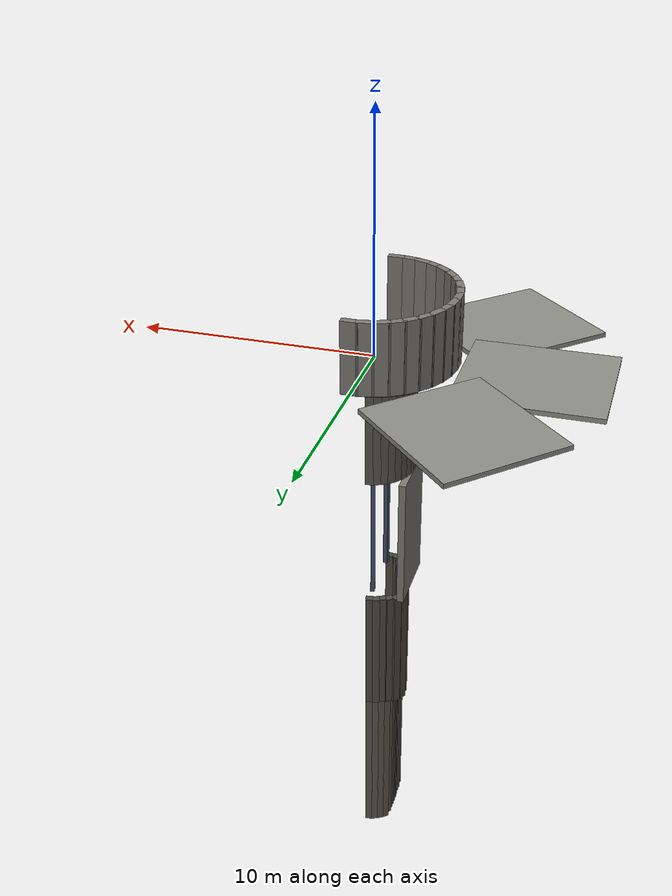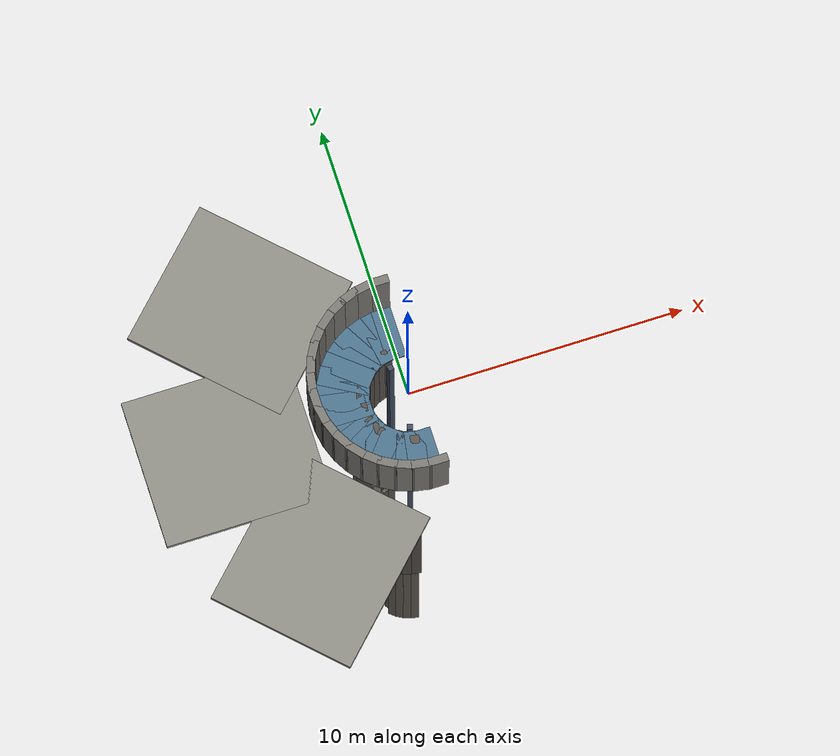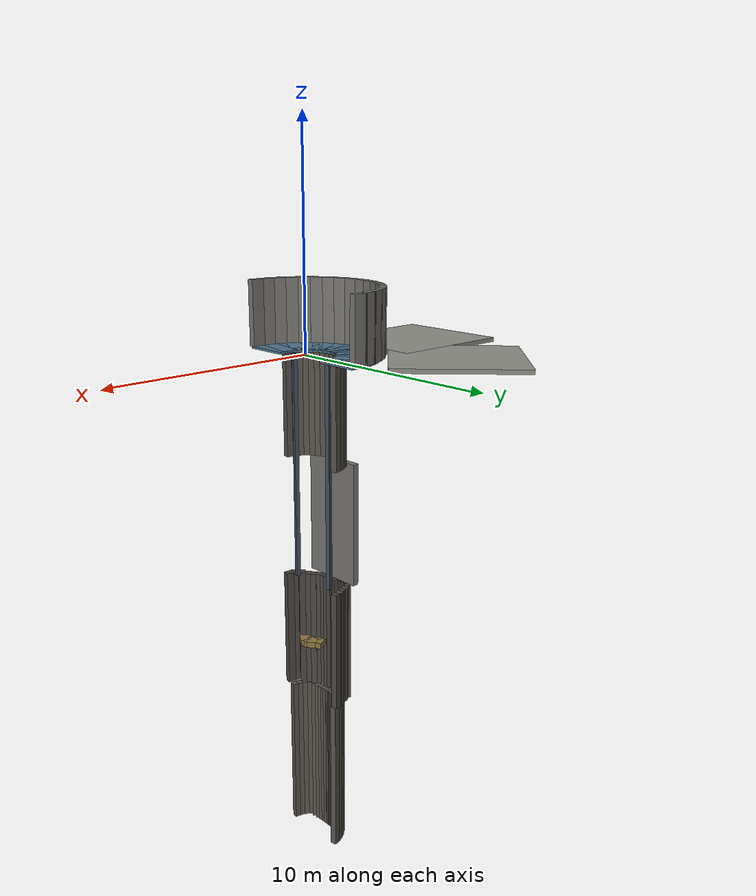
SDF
<sdf version="1.9">
 <world name="vshaft">
  <model name="inspection_shaft">
   <static>true</static>
   <link name="b0_chamber_9">
    <pose>0.0000 3.3500 1.5000 0 0 1.570796</pose>
    <collision name="c"><geometry><box><size>0.300 0.700 3.000</size></box></geometry></collision>
    <visual name="v">
     <geometry><box><size>0.300 0.700 3.000</size></box></geometry>
     <material><ambient>0.48 0.47 0.45 1</ambient><diffuse>0.48 0.47 0.45 1</diffuse></material>
    </visual>
   </link>
   <link name="b0_chamber_10">
    <pose>-0.5817 3.2991 1.5000 0 0 1.745329</pose>
    <collision name="c"><geometry><box><size>0.300 0.700 3.000</size></box></geometry></collision>
    <visual name="v">
     <geometry><box><size>0.300 0.700 3.000</size></box></geometry>
     <material><ambient>0.48 0.47 0.45 1</ambient><diffuse>0.48 0.47 0.45 1</diffuse></material>
    </visual>
   </link>
   <link name="b0_chamber_11">
    <pose>-1.1458 3.1480 1.5000 0 0 1.919862</pose>
    <collision name="c"><geometry><box><size>0.300 0.700 3.000</size></box></geometry></collision>
    <visual name="v">
     <geometry><box><size>0.300 0.700 3.000</size></box></geometry>
     <material><ambient>0.48 0.47 0.45 1</ambient><diffuse>0.48 0.47 0.45 1</diffuse></material>
    </visual>
   </link>
   <link name="b0_chamber_12">
    <pose>-1.6750 2.9012 1.5000 0 0 2.094395</pose>
    <collision name="c"><geometry><box><size>0.300 0.700 3.000</size></box></geometry></collision>
    <visual name="v">
     <geometry><box><size>0.300 0.700 3.000</size></box></geometry>
     <material><ambient>0.48 0.47 0.45 1</ambient><diffuse>0.48 0.47 0.45 1</diffuse></material>
    </visual>
   </link>
   <link name="b0_chamber_13">
    <pose>-2.1533 2.5662 1.5000 0 0 2.268928</pose>
    <collision name="c"><geometry><box><size>0.300 0.700 3.000</size></box></geometry></collision>
    <visual name="v">
     <geometry><box><size>0.300 0.700 3.000</size></box></geometry>
     <material><ambient>0.48 0.47 0.45 1</ambient><diffuse>0.48 0.47 0.45 1</diffuse></material>
    </visual>
   </link>
   <link name="b0_chamber_14">
    <pose>-2.5662 2.1533 1.5000 0 0 2.443461</pose>
    <collision name="c"><geometry><box><size>0.300 0.700 3.000</size></box></geometry></collision>
    <visual name="v">
     <geometry><box><size>0.300 0.700 3.000</size></box></geometry>
     <material><ambient>0.48 0.47 0.45 1</ambient><diffuse>0.48 0.47 0.45 1</diffuse></material>
    </visual>
   </link>
   <link name="b0_chamber_15">
    <pose>-2.9012 1.6750 1.5000 0 0 2.617994</pose>
    <collision name="c"><geometry><box><size>0.300 0.700 3.000</size></box></geometry></collision>
    <visual name="v">
     <geometry><box><size>0.300 0.700 3.000</size></box></geometry>
     <material><ambient>0.48 0.47 0.45 1</ambient><diffuse>0.48 0.47 0.45 1</diffuse></material>
    </visual>
   </link>
   <link name="b0_chamber_16">
    <pose>-3.1480 1.1458 1.5000 0 0 2.792527</pose>
    <collision name="c"><geometry><box><size>0.300 0.700 3.000</size></box></geometry></collision>
    <visual name="v">
     <geometry><box><size>0.300 0.700 3.000</size></box></geometry>
     <material><ambient>0.48 0.47 0.45 1</ambient><diffuse>0.48 0.47 0.45 1</diffuse></material>
    </visual>
   </link>
   <link name="b0_chamber_17">
    <pose>-3.2991 0.5817 1.5000 0 0 2.967060</pose>
    <collision name="c"><geometry><box><size>0.300 0.700 3.000</size></box></geometry></collision>
    <visual name="v">
     <geometry><box><size>0.300 0.700 3.000</size></box></geometry>
     <material><ambient>0.48 0.47 0.45 1</ambient><diffuse>0.48 0.47 0.45 1</diffuse></material>
    </visual>
   </link>
   <link name="b0_chamber_18">
    <pose>-3.3500 0.0000 1.5000 0 0 3.141593</pose>
    <collision name="c"><geometry><box><size>0.300 0.700 3.000</size></box></geometry></collision>
    <visual name="v">
     <geometry><box><size>0.300 0.700 3.000</size></box></geometry>
     <material><ambient>0.48 0.47 0.45 1</ambient><diffuse>0.48 0.47 0.45 1</diffuse></material>
    </visual>
   </link>
   <link name="b0_chamber_19">
    <pose>-3.2991 -0.5817 1.5000 0 0 3.316126</pose>
    <collision name="c"><geometry><box><size>0.300 0.700 3.000</size></box></geometry></collision>
    <visual name="v">
     <geometry><box><size>0.300 0.700 3.000</size></box></geometry>
     <material><ambient>0.48 0.47 0.45 1</ambient><diffuse>0.48 0.47 0.45 1</diffuse></material>
    </visual>
   </link>
   <link name="b0_chamber_20">
    <pose>-3.1480 -1.1458 1.5000 0 0 3.490659</pose>
    <collision name="c"><geometry><box><size>0.300 0.700 3.000</size></box></geometry></collision>
    <visual name="v">
     <geometry><box><size>0.300 0.700 3.000</size></box></geometry>
     <material><ambient>0.48 0.47 0.45 1</ambient><diffuse>0.48 0.47 0.45 1</diffuse></material>
    </visual>
   </link>
   <link name="b0_chamber_21">
    <pose>-2.9012 -1.6750 1.5000 0 0 3.665191</pose>
    <collision name="c"><geometry><box><size>0.300 0.700 3.000</size></box></geometry></collision>
    <visual name="v">
     <geometry><box><size>0.300 0.700 3.000</size></box></geometry>
     <material><ambient>0.48 0.47 0.45 1</ambient><diffuse>0.48 0.47 0.45 1</diffuse></material>
    </visual>
   </link>
   <link name="b0_chamber_22">
    <pose>-2.5662 -2.1533 1.5000 0 0 3.839724</pose>
    <collision name="c"><geometry><box><size>0.300 0.700 3.000</size></box></geometry></collision>
    <visual name="v">
     <geometry><box><size>0.300 0.700 3.000</size></box></geometry>
     <material><ambient>0.48 0.47 0.45 1</ambient><diffuse>0.48 0.47 0.45 1</diffuse></material>
    </visual>
   </link>
   <link name="b0_chamber_23">
    <pose>-2.1533 -2.5662 1.5000 0 0 4.014257</pose>
    <collision name="c"><geometry><box><size>0.300 0.700 3.000</size></box></geometry></collision>
    <visual name="v">
     <geometry><box><size>0.300 0.700 3.000</size></box></geometry>
     <material><ambient>0.48 0.47 0.45 1</ambient><diffuse>0.48 0.47 0.45 1</diffuse></material>
    </visual>
   </link>
   <link name="b0_chamber_24">
    <pose>-1.6750 -2.9012 1.5000 0 0 4.188790</pose>
    <collision name="c"><geometry><box><size>0.300 0.700 3.000</size></box></geometry></collision>
    <visual name="v">
     <geometry><box><size>0.300 0.700 3.000</size></box></geometry>
     <material><ambient>0.48 0.47 0.45 1</ambient><diffuse>0.48 0.47 0.45 1</diffuse></material>
    </visual>
   </link>
   <link name="b0_chamber_25">
    <pose>-1.1458 -3.1480 1.5000 0 0 4.363323</pose>
    <collision name="c"><geometry><box><size>0.300 0.700 3.000</size></box></geometry></collision>
    <visual name="v">
     <geometry><box><size>0.300 0.700 3.000</size></box></geometry>
     <material><ambient>0.48 0.47 0.45 1</ambient><diffuse>0.48 0.47 0.45 1</diffuse></material>
    </visual>
   </link>
   <link name="b0_chamber_26">
    <pose>-0.5817 -3.2991 1.5000 0 0 4.537856</pose>
    <collision name="c"><geometry><box><size>0.300 0.700 3.000</size></box></geometry></collision>
    <visual name="v">
     <geometry><box><size>0.300 0.700 3.000</size></box></geometry>
     <material><ambient>0.48 0.47 0.45 1</ambient><diffuse>0.48 0.47 0.45 1</diffuse></material>
    </visual>
   </link>
   <link name="b0_chamber_27">
    <pose>-0.0000 -3.3500 1.5000 0 0 4.712389</pose>
    <collision name="c"><geometry><box><size>0.300 0.700 3.000</size></box></geometry></collision>
    <visual name="v">
     <geometry><box><size>0.300 0.700 3.000</size></box></geometry>
     <material><ambient>0.48 0.47 0.45 1</ambient><diffuse>0.48 0.47 0.45 1</diffuse></material>
    </visual>
   </link>
   <link name="ledge_ring_9">
    <pose>0.0000 2.3500 -0.0500 0 0 1.570796</pose>
    <collision name="c"><geometry><box><size>2.000 0.700 0.100</size></box></geometry></collision>
    <visual name="v">
     <geometry><box><size>2.000 0.700 0.100</size></box></geometry>
     <material><ambient>0.30 0.45 0.55 1</ambient><diffuse>0.30 0.45 0.55 1</diffuse></material>
    </visual>
   </link>
   <link name="ledge_ring_10">
    <pose>-0.4081 2.3143 -0.0500 0 0 1.745329</pose>
    <collision name="c"><geometry><box><size>2.000 0.700 0.100</size></box></geometry></collision>
    <visual name="v">
     <geometry><box><size>2.000 0.700 0.100</size></box></geometry>
     <material><ambient>0.30 0.45 0.55 1</ambient><diffuse>0.30 0.45 0.55 1</diffuse></material>
    </visual>
   </link>
   <link name="ledge_ring_11">
    <pose>-0.8037 2.2083 -0.0500 0 0 1.919862</pose>
    <collision name="c"><geometry><box><size>2.000 0.700 0.100</size></box></geometry></collision>
    <visual name="v">
     <geometry><box><size>2.000 0.700 0.100</size></box></geometry>
     <material><ambient>0.30 0.45 0.55 1</ambient><diffuse>0.30 0.45 0.55 1</diffuse></material>
    </visual>
   </link>
   <link name="ledge_ring_12">
    <pose>-1.1750 2.0352 -0.0500 0 0 2.094395</pose>
    <collision name="c"><geometry><box><size>2.000 0.700 0.100</size></box></geometry></collision>
    <visual name="v">
     <geometry><box><size>2.000 0.700 0.100</size></box></geometry>
     <material><ambient>0.30 0.45 0.55 1</ambient><diffuse>0.30 0.45 0.55 1</diffuse></material>
    </visual>
   </link>
   <link name="ledge_ring_13">
    <pose>-1.5106 1.8002 -0.0500 0 0 2.268928</pose>
    <collision name="c"><geometry><box><size>2.000 0.700 0.100</size></box></geometry></collision>
    <visual name="v">
     <geometry><box><size>2.000 0.700 0.100</size></box></geometry>
     <material><ambient>0.30 0.45 0.55 1</ambient><diffuse>0.30 0.45 0.55 1</diffuse></material>
    </visual>
   </link>
   <link name="ledge_ring_14">
    <pose>-1.8002 1.5106 -0.0500 0 0 2.443461</pose>
    <collision name="c"><geometry><box><size>2.000 0.700 0.100</size></box></geometry></collision>
    <visual name="v">
     <geometry><box><size>2.000 0.700 0.100</size></box></geometry>
     <material><ambient>0.30 0.45 0.55 1</ambient><diffuse>0.30 0.45 0.55 1</diffuse></material>
    </visual>
   </link>
   <link name="ledge_ring_15">
    <pose>-2.0352 1.1750 -0.0500 0 0 2.617994</pose>
    <collision name="c"><geometry><box><size>2.000 0.700 0.100</size></box></geometry></collision>
    <visual name="v">
     <geometry><box><size>2.000 0.700 0.100</size></box></geometry>
     <material><ambient>0.30 0.45 0.55 1</ambient><diffuse>0.30 0.45 0.55 1</diffuse></material>
    </visual>
   </link>
   <link name="ledge_ring_16">
    <pose>-2.2083 0.8037 -0.0500 0 0 2.792527</pose>
    <collision name="c"><geometry><box><size>2.000 0.700 0.100</size></box></geometry></collision>
    <visual name="v">
     <geometry><box><size>2.000 0.700 0.100</size></box></geometry>
     <material><ambient>0.30 0.45 0.55 1</ambient><diffuse>0.30 0.45 0.55 1</diffuse></material>
    </visual>
   </link>
   <link name="ledge_ring_17">
    <pose>-2.3143 0.4081 -0.0500 0 0 2.967060</pose>
    <collision name="c"><geometry><box><size>2.000 0.700 0.100</size></box></geometry></collision>
    <visual name="v">
     <geometry><box><size>2.000 0.700 0.100</size></box></geometry>
     <material><ambient>0.30 0.45 0.55 1</ambient><diffuse>0.30 0.45 0.55 1</diffuse></material>
    </visual>
   </link>
   <link name="ledge_ring_18">
    <pose>-2.3500 0.0000 -0.0500 0 0 3.141593</pose>
    <collision name="c"><geometry><box><size>2.000 0.700 0.100</size></box></geometry></collision>
    <visual name="v">
     <geometry><box><size>2.000 0.700 0.100</size></box></geometry>
     <material><ambient>0.30 0.45 0.55 1</ambient><diffuse>0.30 0.45 0.55 1</diffuse></material>
    </visual>
   </link>
   <link name="ledge_ring_19">
    <pose>-2.3143 -0.4081 -0.0500 0 0 3.316126</pose>
    <collision name="c"><geometry><box><size>2.000 0.700 0.100</size></box></geometry></collision>
    <visual name="v">
     <geometry><box><size>2.000 0.700 0.100</size></box></geometry>
     <material><ambient>0.30 0.45 0.55 1</ambient><diffuse>0.30 0.45 0.55 1</diffuse></material>
    </visual>
   </link>
   <link name="ledge_ring_20">
    <pose>-2.2083 -0.8037 -0.0500 0 0 3.490659</pose>
    <collision name="c"><geometry><box><size>2.000 0.700 0.100</size></box></geometry></collision>
    <visual name="v">
     <geometry><box><size>2.000 0.700 0.100</size></box></geometry>
     <material><ambient>0.30 0.45 0.55 1</ambient><diffuse>0.30 0.45 0.55 1</diffuse></material>
    </visual>
   </link>
   <link name="ledge_ring_21">
    <pose>-2.0352 -1.1750 -0.0500 0 0 3.665191</pose>
    <collision name="c"><geometry><box><size>2.000 0.700 0.100</size></box></geometry></collision>
    <visual name="v">
     <geometry><box><size>2.000 0.700 0.100</size></box></geometry>
     <material><ambient>0.30 0.45 0.55 1</ambient><diffuse>0.30 0.45 0.55 1</diffuse></material>
    </visual>
   </link>
   <link name="ledge_ring_22">
    <pose>-1.8002 -1.5106 -0.0500 0 0 3.839724</pose>
    <collision name="c"><geometry><box><size>2.000 0.700 0.100</size></box></geometry></collision>
    <visual name="v">
     <geometry><box><size>2.000 0.700 0.100</size></box></geometry>
     <material><ambient>0.30 0.45 0.55 1</ambient><diffuse>0.30 0.45 0.55 1</diffuse></material>
    </visual>
   </link>
   <link name="ledge_ring_23">
    <pose>-1.5106 -1.8002 -0.0500 0 0 4.014257</pose>
    <collision name="c"><geometry><box><size>2.000 0.700 0.100</size></box></geometry></collision>
    <visual name="v">
     <geometry><box><size>2.000 0.700 0.100</size></box></geometry>
     <material><ambient>0.30 0.45 0.55 1</ambient><diffuse>0.30 0.45 0.55 1</diffuse></material>
    </visual>
   </link>
   <link name="ledge_ring_24">
    <pose>-1.1750 -2.0352 -0.0500 0 0 4.188790</pose>
    <collision name="c"><geometry><box><size>2.000 0.700 0.100</size></box></geometry></collision>
    <visual name="v">
     <geometry><box><size>2.000 0.700 0.100</size></box></geometry>
     <material><ambient>0.30 0.45 0.55 1</ambient><diffuse>0.30 0.45 0.55 1</diffuse></material>
    </visual>
   </link>
   <link name="ledge_ring_25">
    <pose>-0.8037 -2.2083 -0.0500 0 0 4.363323</pose>
    <collision name="c"><geometry><box><size>2.000 0.700 0.100</size></box></geometry></collision>
    <visual name="v">
     <geometry><box><size>2.000 0.700 0.100</size></box></geometry>
     <material><ambient>0.30 0.45 0.55 1</ambient><diffuse>0.30 0.45 0.55 1</diffuse></material>
    </visual>
   </link>
   <link name="ledge_ring_26">
    <pose>-0.4081 -2.3143 -0.0500 0 0 4.537856</pose>
    <collision name="c"><geometry><box><size>2.000 0.700 0.100</size></box></geometry></collision>
    <visual name="v">
     <geometry><box><size>2.000 0.700 0.100</size></box></geometry>
     <material><ambient>0.30 0.45 0.55 1</ambient><diffuse>0.30 0.45 0.55 1</diffuse></material>
    </visual>
   </link>
   <link name="ledge_ring_27">
    <pose>-0.0000 -2.3500 -0.0500 0 0 4.712389</pose>
    <collision name="c"><geometry><box><size>2.000 0.700 0.100</size></box></geometry></collision>
    <visual name="v">
     <geometry><box><size>2.000 0.700 0.100</size></box></geometry>
     <material><ambient>0.30 0.45 0.55 1</ambient><diffuse>0.30 0.45 0.55 1</diffuse></material>
    </visual>
   </link>
   <link name="b1_circ_10">
    <pose>-0.2865 1.6249 -2.5000 0 0 1.745329</pose>
    <collision name="c"><geometry><box><size>0.300 0.328 5.000</size></box></geometry></collision>
    <visual name="v">
     <geometry><box><size>0.300 0.328 5.000</size></box></geometry>
     <material><ambient>0.35 0.33 0.30 1</ambient><diffuse>0.35 0.33 0.30 1</diffuse></material>
    </visual>
   </link>
   <link name="b1_circ_11">
    <pose>-0.5643 1.5505 -2.5000 0 0 1.919862</pose>
    <collision name="c"><geometry><box><size>0.300 0.328 5.000</size></box></geometry></collision>
    <visual name="v">
     <geometry><box><size>0.300 0.328 5.000</size></box></geometry>
     <material><ambient>0.35 0.33 0.30 1</ambient><diffuse>0.35 0.33 0.30 1</diffuse></material>
    </visual>
   </link>
   <link name="b1_circ_12">
    <pose>-0.8250 1.4289 -2.5000 0 0 2.094395</pose>
    <collision name="c"><geometry><box><size>0.300 0.328 5.000</size></box></geometry></collision>
    <visual name="v">
     <geometry><box><size>0.300 0.328 5.000</size></box></geometry>
     <material><ambient>0.35 0.33 0.30 1</ambient><diffuse>0.35 0.33 0.30 1</diffuse></material>
    </visual>
   </link>
   <link name="b1_circ_13">
    <pose>-1.0606 1.2640 -2.5000 0 0 2.268928</pose>
    <collision name="c"><geometry><box><size>0.300 0.328 5.000</size></box></geometry></collision>
    <visual name="v">
     <geometry><box><size>0.300 0.328 5.000</size></box></geometry>
     <material><ambient>0.35 0.33 0.30 1</ambient><diffuse>0.35 0.33 0.30 1</diffuse></material>
    </visual>
   </link>
   <link name="b1_circ_14">
    <pose>-1.2640 1.0606 -2.5000 0 0 2.443461</pose>
    <collision name="c"><geometry><box><size>0.300 0.328 5.000</size></box></geometry></collision>
    <visual name="v">
     <geometry><box><size>0.300 0.328 5.000</size></box></geometry>
     <material><ambient>0.35 0.33 0.30 1</ambient><diffuse>0.35 0.33 0.30 1</diffuse></material>
    </visual>
   </link>
   <link name="b1_circ_15">
    <pose>-1.4289 0.8250 -2.5000 0 0 2.617994</pose>
    <collision name="c"><geometry><box><size>0.300 0.328 5.000</size></box></geometry></collision>
    <visual name="v">
     <geometry><box><size>0.300 0.328 5.000</size></box></geometry>
     <material><ambient>0.35 0.33 0.30 1</ambient><diffuse>0.35 0.33 0.30 1</diffuse></material>
    </visual>
   </link>
   <link name="b1_circ_16">
    <pose>-1.5505 0.5643 -2.5000 0 0 2.792527</pose>
    <collision name="c"><geometry><box><size>0.300 0.328 5.000</size></box></geometry></collision>
    <visual name="v">
     <geometry><box><size>0.300 0.328 5.000</size></box></geometry>
     <material><ambient>0.35 0.33 0.30 1</ambient><diffuse>0.35 0.33 0.30 1</diffuse></material>
    </visual>
   </link>
   <link name="b1_circ_17">
    <pose>-1.6249 0.2865 -2.5000 0 0 2.967060</pose>
    <collision name="c"><geometry><box><size>0.300 0.328 5.000</size></box></geometry></collision>
    <visual name="v">
     <geometry><box><size>0.300 0.328 5.000</size></box></geometry>
     <material><ambient>0.35 0.33 0.30 1</ambient><diffuse>0.35 0.33 0.30 1</diffuse></material>
    </visual>
   </link>
   <link name="b1_circ_18">
    <pose>-1.6500 0.0000 -2.5000 0 0 3.141593</pose>
    <collision name="c"><geometry><box><size>0.300 0.328 5.000</size></box></geometry></collision>
    <visual name="v">
     <geometry><box><size>0.300 0.328 5.000</size></box></geometry>
     <material><ambient>0.35 0.33 0.30 1</ambient><diffuse>0.35 0.33 0.30 1</diffuse></material>
    </visual>
   </link>
   <link name="b1_circ_19">
    <pose>-1.6249 -0.2865 -2.5000 0 0 3.316126</pose>
    <collision name="c"><geometry><box><size>0.300 0.328 5.000</size></box></geometry></collision>
    <visual name="v">
     <geometry><box><size>0.300 0.328 5.000</size></box></geometry>
     <material><ambient>0.35 0.33 0.30 1</ambient><diffuse>0.35 0.33 0.30 1</diffuse></material>
    </visual>
   </link>
   <link name="b1_circ_20">
    <pose>-1.5505 -0.5643 -2.5000 0 0 3.490659</pose>
    <collision name="c"><geometry><box><size>0.300 0.328 5.000</size></box></geometry></collision>
    <visual name="v">
     <geometry><box><size>0.300 0.328 5.000</size></box></geometry>
     <material><ambient>0.35 0.33 0.30 1</ambient><diffuse>0.35 0.33 0.30 1</diffuse></material>
    </visual>
   </link>
   <link name="b1_circ_21">
    <pose>-1.4289 -0.8250 -2.5000 0 0 3.665191</pose>
    <collision name="c"><geometry><box><size>0.300 0.328 5.000</size></box></geometry></collision>
    <visual name="v">
     <geometry><box><size>0.300 0.328 5.000</size></box></geometry>
     <material><ambient>0.35 0.33 0.30 1</ambient><diffuse>0.35 0.33 0.30 1</diffuse></material>
    </visual>
   </link>
   <link name="b1_circ_22">
    <pose>-1.2640 -1.0606 -2.5000 0 0 3.839724</pose>
    <collision name="c"><geometry><box><size>0.300 0.328 5.000</size></box></geometry></collision>
    <visual name="v">
     <geometry><box><size>0.300 0.328 5.000</size></box></geometry>
     <material><ambient>0.35 0.33 0.30 1</ambient><diffuse>0.35 0.33 0.30 1</diffuse></material>
    </visual>
   </link>
   <link name="b1_circ_23">
    <pose>-1.0606 -1.2640 -2.5000 0 0 4.014257</pose>
    <collision name="c"><geometry><box><size>0.300 0.328 5.000</size></box></geometry></collision>
    <visual name="v">
     <geometry><box><size>0.300 0.328 5.000</size></box></geometry>
     <material><ambient>0.35 0.33 0.30 1</ambient><diffuse>0.35 0.33 0.30 1</diffuse></material>
    </visual>
   </link>
   <link name="b1_circ_24">
    <pose>-0.8250 -1.4289 -2.5000 0 0 4.188790</pose>
    <collision name="c"><geometry><box><size>0.300 0.328 5.000</size></box></geometry></collision>
    <visual name="v">
     <geometry><box><size>0.300 0.328 5.000</size></box></geometry>
     <material><ambient>0.35 0.33 0.30 1</ambient><diffuse>0.35 0.33 0.30 1</diffuse></material>
    </visual>
   </link>
   <link name="b1_circ_25">
    <pose>-0.5643 -1.5505 -2.5000 0 0 4.363323</pose>
    <collision name="c"><geometry><box><size>0.300 0.328 5.000</size></box></geometry></collision>
    <visual name="v">
     <geometry><box><size>0.300 0.328 5.000</size></box></geometry>
     <material><ambient>0.35 0.33 0.30 1</ambient><diffuse>0.35 0.33 0.30 1</diffuse></material>
    </visual>
   </link>
   <link name="b1_circ_26">
    <pose>-0.2865 -1.6249 -2.5000 0 0 4.537856</pose>
    <collision name="c"><geometry><box><size>0.300 0.328 5.000</size></box></geometry></collision>
    <visual name="v">
     <geometry><box><size>0.300 0.328 5.000</size></box></geometry>
     <material><ambient>0.35 0.33 0.30 1</ambient><diffuse>0.35 0.33 0.30 1</diffuse></material>
    </visual>
   </link>
   <link name="b2_rect_nx">
    <pose>-1.6500 0.0000 -8.0000 0 0 0.000000</pose>
    <collision name="c"><geometry><box><size>0.300 3.000 6.000</size></box></geometry></collision>
    <visual name="v">
     <geometry><box><size>0.300 3.000 6.000</size></box></geometry>
     <material><ambient>0.48 0.47 0.45 1</ambient><diffuse>0.48 0.47 0.45 1</diffuse></material>
    </visual>
   </link>
   <link name="b3_rough_10">
    <pose>-0.2819 1.5989 -14.0000 0 0 1.745329</pose>
    <collision name="c"><geometry><box><size>0.300 0.322 6.000</size></box></geometry></collision>
    <visual name="v">
     <geometry><box><size>0.300 0.322 6.000</size></box></geometry>
     <material><ambient>0.30 0.28 0.26 1</ambient><diffuse>0.30 0.28 0.26 1</diffuse></material>
    </visual>
   </link>
   <link name="b3_rough_11">
    <pose>-0.5662 1.5556 -14.0000 0 0 1.919862</pose>
    <collision name="c"><geometry><box><size>0.300 0.329 6.000</size></box></geometry></collision>
    <visual name="v">
     <geometry><box><size>0.300 0.329 6.000</size></box></geometry>
     <material><ambient>0.30 0.28 0.26 1</ambient><diffuse>0.30 0.28 0.26 1</diffuse></material>
    </visual>
   </link>
   <link name="b3_rough_12">
    <pose>-0.8274 1.4331 -14.0000 0 0 2.094395</pose>
    <collision name="c"><geometry><box><size>0.300 0.329 6.000</size></box></geometry></collision>
    <visual name="v">
     <geometry><box><size>0.300 0.329 6.000</size></box></geometry>
     <material><ambient>0.30 0.28 0.26 1</ambient><diffuse>0.30 0.28 0.26 1</diffuse></material>
    </visual>
   </link>
   <link name="b3_rough_13">
    <pose>-1.1124 1.3257 -14.0000 0 0 2.268928</pose>
    <collision name="c"><geometry><box><size>0.300 0.346 6.000</size></box></geometry></collision>
    <visual name="v">
     <geometry><box><size>0.300 0.346 6.000</size></box></geometry>
     <material><ambient>0.30 0.28 0.26 1</ambient><diffuse>0.30 0.28 0.26 1</diffuse></material>
    </visual>
   </link>
   <link name="b3_rough_14">
    <pose>-1.4182 1.1900 -14.0000 0 0 2.443461</pose>
    <collision name="c"><geometry><box><size>0.300 0.372 6.000</size></box></geometry></collision>
    <visual name="v">
     <geometry><box><size>0.300 0.372 6.000</size></box></geometry>
     <material><ambient>0.30 0.28 0.26 1</ambient><diffuse>0.30 0.28 0.26 1</diffuse></material>
    </visual>
   </link>
   <link name="b3_rough_15">
    <pose>-1.6180 0.9341 -14.0000 0 0 2.617994</pose>
    <collision name="c"><geometry><box><size>0.300 0.376 6.000</size></box></geometry></collision>
    <visual name="v">
     <geometry><box><size>0.300 0.376 6.000</size></box></geometry>
     <material><ambient>0.30 0.28 0.26 1</ambient><diffuse>0.30 0.28 0.26 1</diffuse></material>
    </visual>
   </link>
   <link name="b3_rough_16">
    <pose>-1.6055 0.5844 -14.0000 0 0 2.792527</pose>
    <collision name="c"><geometry><box><size>0.300 0.341 6.000</size></box></geometry></collision>
    <visual name="v">
     <geometry><box><size>0.300 0.341 6.000</size></box></geometry>
     <material><ambient>0.30 0.28 0.26 1</ambient><diffuse>0.30 0.28 0.26 1</diffuse></material>
    </visual>
   </link>
   <link name="b3_rough_17">
    <pose>-1.4619 0.2578 -14.0000 0 0 2.967060</pose>
    <collision name="c"><geometry><box><size>0.300 0.292 6.000</size></box></geometry></collision>
    <visual name="v">
     <geometry><box><size>0.300 0.292 6.000</size></box></geometry>
     <material><ambient>0.30 0.28 0.26 1</ambient><diffuse>0.30 0.28 0.26 1</diffuse></material>
    </visual>
   </link>
   <link name="b3_rough_18">
    <pose>-1.3720 0.0000 -14.0000 0 0 3.141593</pose>
    <collision name="c"><geometry><box><size>0.300 0.267 6.000</size></box></geometry></collision>
    <visual name="v">
     <geometry><box><size>0.300 0.267 6.000</size></box></geometry>
     <material><ambient>0.30 0.28 0.26 1</ambient><diffuse>0.30 0.28 0.26 1</diffuse></material>
    </visual>
   </link>
   <link name="b3_rough_19">
    <pose>-1.3896 -0.2450 -14.0000 0 0 3.316126</pose>
    <collision name="c"><geometry><box><size>0.300 0.276 6.000</size></box></geometry></collision>
    <visual name="v">
     <geometry><box><size>0.300 0.276 6.000</size></box></geometry>
     <material><ambient>0.30 0.28 0.26 1</ambient><diffuse>0.30 0.28 0.26 1</diffuse></material>
    </visual>
   </link>
   <link name="b3_rough_20">
    <pose>-1.3926 -0.5069 -14.0000 0 0 3.490659</pose>
    <collision name="c"><geometry><box><size>0.300 0.291 6.000</size></box></geometry></collision>
    <visual name="v">
     <geometry><box><size>0.300 0.291 6.000</size></box></geometry>
     <material><ambient>0.30 0.28 0.26 1</ambient><diffuse>0.30 0.28 0.26 1</diffuse></material>
    </visual>
   </link>
   <link name="b3_rough_21">
    <pose>-1.2828 -0.7406 -14.0000 0 0 3.665191</pose>
    <collision name="c"><geometry><box><size>0.300 0.291 6.000</size></box></geometry></collision>
    <visual name="v">
     <geometry><box><size>0.300 0.291 6.000</size></box></geometry>
     <material><ambient>0.30 0.28 0.26 1</ambient><diffuse>0.30 0.28 0.26 1</diffuse></material>
    </visual>
   </link>
   <link name="b3_rough_22">
    <pose>-1.1188 -0.9387 -14.0000 0 0 3.839724</pose>
    <collision name="c"><geometry><box><size>0.300 0.287 6.000</size></box></geometry></collision>
    <visual name="v">
     <geometry><box><size>0.300 0.287 6.000</size></box></geometry>
     <material><ambient>0.30 0.28 0.26 1</ambient><diffuse>0.30 0.28 0.26 1</diffuse></material>
    </visual>
   </link>
   <link name="b3_rough_23">
    <pose>-0.9930 -1.1834 -14.0000 0 0 4.014257</pose>
    <collision name="c"><geometry><box><size>0.300 0.305 6.000</size></box></geometry></collision>
    <visual name="v">
     <geometry><box><size>0.300 0.305 6.000</size></box></geometry>
     <material><ambient>0.30 0.28 0.26 1</ambient><diffuse>0.30 0.28 0.26 1</diffuse></material>
    </visual>
   </link>
   <link name="b3_rough_24">
    <pose>-0.8711 -1.5089 -14.0000 0 0 4.188790</pose>
    <collision name="c"><geometry><box><size>0.300 0.348 6.000</size></box></geometry></collision>
    <visual name="v">
     <geometry><box><size>0.300 0.348 6.000</size></box></geometry>
     <material><ambient>0.30 0.28 0.26 1</ambient><diffuse>0.30 0.28 0.26 1</diffuse></material>
    </visual>
   </link>
   <link name="b3_rough_25">
    <pose>-0.6502 -1.7864 -14.0000 0 0 4.363323</pose>
    <collision name="c"><geometry><box><size>0.300 0.383 6.000</size></box></geometry></collision>
    <visual name="v">
     <geometry><box><size>0.300 0.383 6.000</size></box></geometry>
     <material><ambient>0.30 0.28 0.26 1</ambient><diffuse>0.30 0.28 0.26 1</diffuse></material>
    </visual>
   </link>
   <link name="b3_rough_26">
    <pose>-0.3265 -1.8519 -14.0000 0 0 4.537856</pose>
    <collision name="c"><geometry><box><size>0.300 0.378 6.000</size></box></geometry></collision>
    <visual name="v">
     <geometry><box><size>0.300 0.378 6.000</size></box></geometry>
     <material><ambient>0.30 0.28 0.26 1</ambient><diffuse>0.30 0.28 0.26 1</diffuse></material>
    </visual>
   </link>
   <link name="b4_d_10">
    <pose>-0.2657 1.5068 -21.0000 0 0 1.745329</pose>
    <collision name="c"><geometry><box><size>0.300 0.302 8.000</size></box></geometry></collision>
    <visual name="v">
     <geometry><box><size>0.300 0.302 8.000</size></box></geometry>
     <material><ambient>0.35 0.33 0.30 1</ambient><diffuse>0.35 0.33 0.30 1</diffuse></material>
    </visual>
   </link>
   <link name="b4_d_11">
    <pose>-0.5233 1.4377 -21.0000 0 0 1.919862</pose>
    <collision name="c"><geometry><box><size>0.300 0.302 8.000</size></box></geometry></collision>
    <visual name="v">
     <geometry><box><size>0.300 0.302 8.000</size></box></geometry>
     <material><ambient>0.35 0.33 0.30 1</ambient><diffuse>0.35 0.33 0.30 1</diffuse></material>
    </visual>
   </link>
   <link name="b4_d_12">
    <pose>-0.7650 1.3250 -21.0000 0 0 2.094395</pose>
    <collision name="c"><geometry><box><size>0.300 0.302 8.000</size></box></geometry></collision>
    <visual name="v">
     <geometry><box><size>0.300 0.302 8.000</size></box></geometry>
     <material><ambient>0.35 0.33 0.30 1</ambient><diffuse>0.35 0.33 0.30 1</diffuse></material>
    </visual>
   </link>
   <link name="b4_d_13">
    <pose>-0.9835 1.1720 -21.0000 0 0 2.268928</pose>
    <collision name="c"><geometry><box><size>0.300 0.302 8.000</size></box></geometry></collision>
    <visual name="v">
     <geometry><box><size>0.300 0.302 8.000</size></box></geometry>
     <material><ambient>0.35 0.33 0.30 1</ambient><diffuse>0.35 0.33 0.30 1</diffuse></material>
    </visual>
   </link>
   <link name="b4_d_14">
    <pose>-1.0349 0.8684 -21.0000 0 0 2.443461</pose>
    <collision name="c"><geometry><box><size>0.300 0.263 8.000</size></box></geometry></collision>
    <visual name="v">
     <geometry><box><size>0.300 0.263 8.000</size></box></geometry>
     <material><ambient>0.35 0.33 0.30 1</ambient><diffuse>0.35 0.33 0.30 1</diffuse></material>
    </visual>
   </link>
   <link name="b4_d_15">
    <pose>-1.0499 0.6062 -21.0000 0 0 2.617994</pose>
    <collision name="c"><geometry><box><size>0.300 0.232 8.000</size></box></geometry></collision>
    <visual name="v">
     <geometry><box><size>0.300 0.232 8.000</size></box></geometry>
     <material><ambient>0.35 0.33 0.30 1</ambient><diffuse>0.35 0.33 0.30 1</diffuse></material>
    </visual>
   </link>
   <link name="b4_d_16">
    <pose>-1.0610 0.3862 -21.0000 0 0 2.792527</pose>
    <collision name="c"><geometry><box><size>0.300 0.214 8.000</size></box></geometry></collision>
    <visual name="v">
     <geometry><box><size>0.300 0.214 8.000</size></box></geometry>
     <material><ambient>0.35 0.33 0.30 1</ambient><diffuse>0.35 0.33 0.30 1</diffuse></material>
    </visual>
   </link>
   <link name="b4_d_17">
    <pose>-1.0677 0.1883 -21.0000 0 0 2.967060</pose>
    <collision name="c"><geometry><box><size>0.300 0.204 8.000</size></box></geometry></collision>
    <visual name="v">
     <geometry><box><size>0.300 0.204 8.000</size></box></geometry>
     <material><ambient>0.35 0.33 0.30 1</ambient><diffuse>0.35 0.33 0.30 1</diffuse></material>
    </visual>
   </link>
   <link name="b4_d_18">
    <pose>-1.0700 0.0000 -21.0000 0 0 3.141593</pose>
    <collision name="c"><geometry><box><size>0.300 0.201 8.000</size></box></geometry></collision>
    <visual name="v">
     <geometry><box><size>0.300 0.201 8.000</size></box></geometry>
     <material><ambient>0.35 0.33 0.30 1</ambient><diffuse>0.35 0.33 0.30 1</diffuse></material>
    </visual>
   </link>
   <link name="b4_d_19">
    <pose>-1.0677 -0.1883 -21.0000 0 0 3.316126</pose>
    <collision name="c"><geometry><box><size>0.300 0.204 8.000</size></box></geometry></collision>
    <visual name="v">
     <geometry><box><size>0.300 0.204 8.000</size></box></geometry>
     <material><ambient>0.35 0.33 0.30 1</ambient><diffuse>0.35 0.33 0.30 1</diffuse></material>
    </visual>
   </link>
   <link name="b4_d_20">
    <pose>-1.0610 -0.3862 -21.0000 0 0 3.490659</pose>
    <collision name="c"><geometry><box><size>0.300 0.214 8.000</size></box></geometry></collision>
    <visual name="v">
     <geometry><box><size>0.300 0.214 8.000</size></box></geometry>
     <material><ambient>0.35 0.33 0.30 1</ambient><diffuse>0.35 0.33 0.30 1</diffuse></material>
    </visual>
   </link>
   <link name="b4_d_21">
    <pose>-1.0499 -0.6062 -21.0000 0 0 3.665191</pose>
    <collision name="c"><geometry><box><size>0.300 0.232 8.000</size></box></geometry></collision>
    <visual name="v">
     <geometry><box><size>0.300 0.232 8.000</size></box></geometry>
     <material><ambient>0.35 0.33 0.30 1</ambient><diffuse>0.35 0.33 0.30 1</diffuse></material>
    </visual>
   </link>
   <link name="b4_d_22">
    <pose>-1.0349 -0.8684 -21.0000 0 0 3.839724</pose>
    <collision name="c"><geometry><box><size>0.300 0.263 8.000</size></box></geometry></collision>
    <visual name="v">
     <geometry><box><size>0.300 0.263 8.000</size></box></geometry>
     <material><ambient>0.35 0.33 0.30 1</ambient><diffuse>0.35 0.33 0.30 1</diffuse></material>
    </visual>
   </link>
   <link name="b4_d_23">
    <pose>-0.9835 -1.1720 -21.0000 0 0 4.014257</pose>
    <collision name="c"><geometry><box><size>0.300 0.302 8.000</size></box></geometry></collision>
    <visual name="v">
     <geometry><box><size>0.300 0.302 8.000</size></box></geometry>
     <material><ambient>0.35 0.33 0.30 1</ambient><diffuse>0.35 0.33 0.30 1</diffuse></material>
    </visual>
   </link>
   <link name="b4_d_24">
    <pose>-0.7650 -1.3250 -21.0000 0 0 4.188790</pose>
    <collision name="c"><geometry><box><size>0.300 0.302 8.000</size></box></geometry></collision>
    <visual name="v">
     <geometry><box><size>0.300 0.302 8.000</size></box></geometry>
     <material><ambient>0.35 0.33 0.30 1</ambient><diffuse>0.35 0.33 0.30 1</diffuse></material>
    </visual>
   </link>
   <link name="b4_d_25">
    <pose>-0.5233 -1.4377 -21.0000 0 0 4.363323</pose>
    <collision name="c"><geometry><box><size>0.300 0.302 8.000</size></box></geometry></collision>
    <visual name="v">
     <geometry><box><size>0.300 0.302 8.000</size></box></geometry>
     <material><ambient>0.35 0.33 0.30 1</ambient><diffuse>0.35 0.33 0.30 1</diffuse></material>
    </visual>
   </link>
   <link name="b4_d_26">
    <pose>-0.2657 -1.5068 -21.0000 0 0 4.537856</pose>
    <collision name="c"><geometry><box><size>0.300 0.302 8.000</size></box></geometry></collision>
    <visual name="v">
     <geometry><box><size>0.300 0.302 8.000</size></box></geometry>
     <material><ambient>0.35 0.33 0.30 1</ambient><diffuse>0.35 0.33 0.30 1</diffuse></material>
    </visual>
   </link>
   <link name="ledge_0">
    <pose>-0.8758 -0.3188 -14.5000 0 0 3.490659</pose>
    <collision name="c"><geometry><box><size>0.550 0.500 0.300</size></box></geometry></collision>
    <visual name="v">
     <geometry><box><size>0.550 0.500 0.300</size></box></geometry>
     <material><ambient>0.55 0.45 0.25 1</ambient><diffuse>0.55 0.45 0.25 1</diffuse></material>
    </visual>
   </link>
   <link name="ledge_1">
    <pose>-0.8065 -0.4656 -14.5000 0 0 3.665191</pose>
    <collision name="c"><geometry><box><size>0.550 0.500 0.300</size></box></geometry></collision>
    <visual name="v">
     <geometry><box><size>0.550 0.500 0.300</size></box></geometry>
     <material><ambient>0.55 0.45 0.25 1</ambient><diffuse>0.55 0.45 0.25 1</diffuse></material>
    </visual>
   </link>
   <link name="ledge_2">
    <pose>-0.6974 -0.5852 -14.5000 0 0 3.839724</pose>
    <collision name="c"><geometry><box><size>0.550 0.500 0.300</size></box></geometry></collision>
    <visual name="v">
     <geometry><box><size>0.550 0.500 0.300</size></box></geometry>
     <material><ambient>0.55 0.45 0.25 1</ambient><diffuse>0.55 0.45 0.25 1</diffuse></material>
    </visual>
   </link>
   <link name="ledge_3">
    <pose>-0.6395 -0.7621 -14.5000 0 0 4.014257</pose>
    <collision name="c"><geometry><box><size>0.550 0.500 0.300</size></box></geometry></collision>
    <visual name="v">
     <geometry><box><size>0.550 0.500 0.300</size></box></geometry>
     <material><ambient>0.55 0.45 0.25 1</ambient><diffuse>0.55 0.45 0.25 1</diffuse></material>
    </visual>
   </link>
   <link name="ledge_4">
    <pose>-0.5961 -1.0326 -14.5000 0 0 4.188790</pose>
    <collision name="c"><geometry><box><size>0.550 0.500 0.300</size></box></geometry></collision>
    <visual name="v">
     <geometry><box><size>0.550 0.500 0.300</size></box></geometry>
     <material><ambient>0.55 0.45 0.25 1</ambient><diffuse>0.55 0.45 0.25 1</diffuse></material>
    </visual>
   </link>
   <link name="pipe_0">
    <pose>-0.3002 1.1205 -5.5000 0 0 1.832596</pose>
    <collision name="c"><geometry><box><size>0.200 0.200 10.800</size></box></geometry></collision>
    <visual name="v">
     <geometry><box><size>0.200 0.200 10.800</size></box></geometry>
     <material><ambient>0.25 0.30 0.38 1</ambient><diffuse>0.25 0.30 0.38 1</diffuse></material>
    </visual>
   </link>
   <link name="pipe_1">
    <pose>-0.3002 -1.1205 -5.5000 0 0 4.450590</pose>
    <collision name="c"><geometry><box><size>0.200 0.200 10.800</size></box></geometry></collision>
    <visual name="v">
     <geometry><box><size>0.200 0.200 10.800</size></box></geometry>
     <material><ambient>0.25 0.30 0.38 1</ambient><diffuse>0.25 0.30 0.38 1</diffuse></material>
    </visual>
   </link>
   <link name="ground_3">
    <pose>-4.6669 4.6669 -0.1000 0 0 2.356194</pose>
    <collision name="c"><geometry><box><size>6.000 5.400 0.200</size></box></geometry></collision>
    <visual name="v">
     <geometry><box><size>6.000 5.400 0.200</size></box></geometry>
     <material><ambient>0.55 0.55 0.52 1</ambient><diffuse>0.55 0.55 0.52 1</diffuse></material>
    </visual>
   </link>
   <link name="ground_4">
    <pose>-6.6000 0.0000 -0.1000 0 0 3.141593</pose>
    <collision name="c"><geometry><box><size>6.000 5.400 0.200</size></box></geometry></collision>
    <visual name="v">
     <geometry><box><size>6.000 5.400 0.200</size></box></geometry>
     <material><ambient>0.55 0.55 0.52 1</ambient><diffuse>0.55 0.55 0.52 1</diffuse></material>
    </visual>
   </link>
   <link name="ground_5">
    <pose>-4.6669 -4.6669 -0.1000 0 0 3.926991</pose>
    <collision name="c"><geometry><box><size>6.000 5.400 0.200</size></box></geometry></collision>
    <visual name="v">
     <geometry><box><size>6.000 5.400 0.200</size></box></geometry>
     <material><ambient>0.55 0.55 0.52 1</ambient><diffuse>0.55 0.55 0.52 1</diffuse></material>
    </visual>
   </link>
  </model>
 </world>
</sdf>
